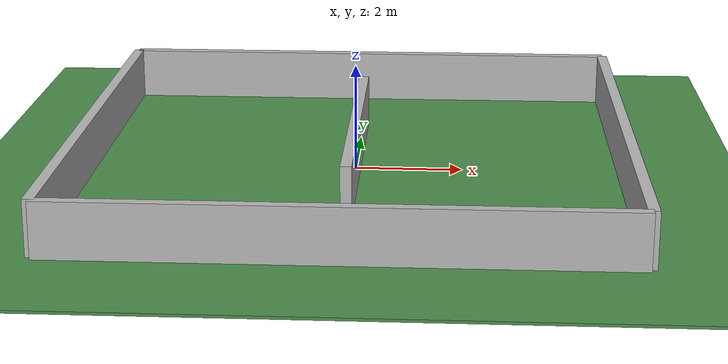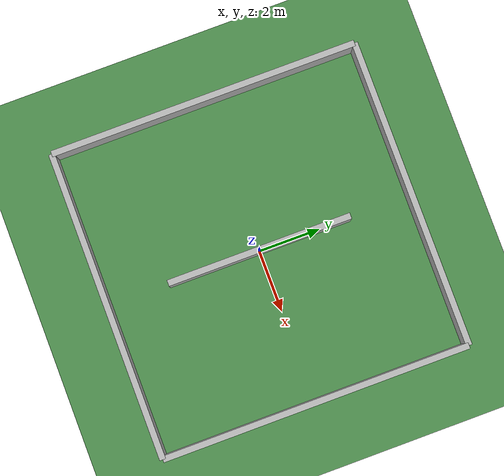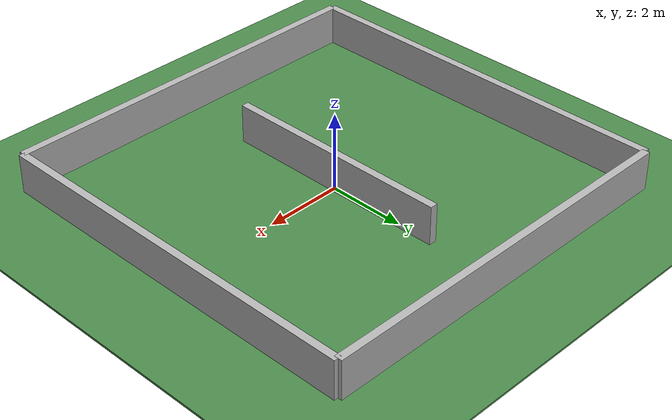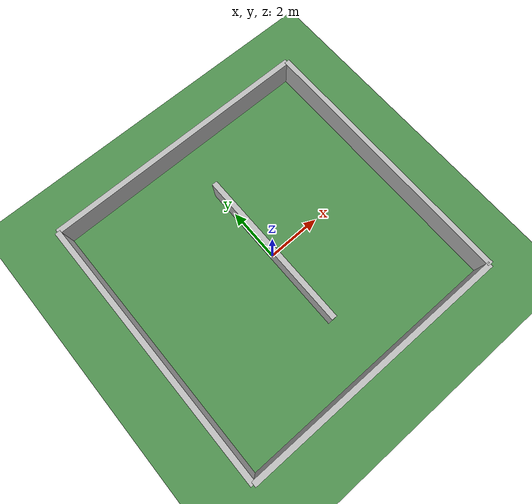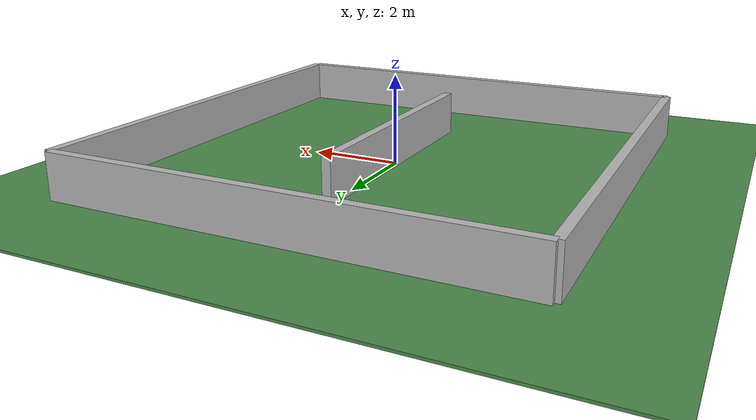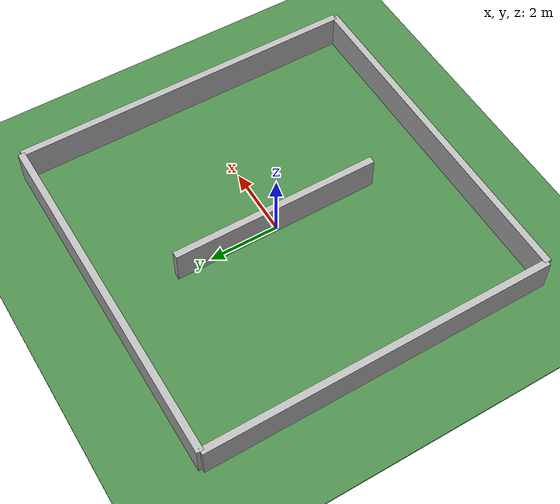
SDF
<?xml version="1.0"?>
<sdf version="1.8">
  <world name="default">
    <!-- Gazebo Sim systems -->
    <gravity>0 0 -9.81</gravity>
    <plugin filename="gz-sim-scene-broadcaster-system"   name="gz::sim::systems::SceneBroadcaster"/>
    <plugin filename="gz-sim-sensors-system"             name="gz::sim::systems::Sensors"/>
    <plugin filename="gz-sim-user-commands-system"       name="gz::sim::systems::UserCommands"/>
    <plugin filename="gz-sim-physics-system"             name="gz::sim::systems::Physics"/>

    <!-- Ground plane from your repo -->
    <include>
      <uri>model://flat_ground</uri>
      <name>ground</name>
      <pose>0 0 0 0 0 0</pose>
    </include>

    <!-- Your maze model -->
    <include>
      <uri>model://maze</uri>
      <name>maze</name>
      <pose>0 0 0 0 0 0</pose>
    </include>
  </world>
</sdf>

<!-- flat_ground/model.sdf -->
<sdf version="1.8">
  <model name="flat_ground">
    <static>true</static>
    <link name="ground">
      <!-- Slightly below z=0 so top surface is at z=0 -->
      <pose>0 0 -0.025 0 0 0</pose>
      <collision name="col">
        <geometry><box><size>100 100 0.05</size></box></geometry>
        <surface>
          <friction>
            <ode>
              <mu>1.0</mu>
              <mu2>1.0</mu2>
            </ode>
          </friction>
        </surface>
      </collision>
      <visual name="vis">
        <geometry><box><size>100 100 0.05</size></box></geometry>
        <material>
          <ambient>0.30 0.55 0.30 1</ambient>
          <diffuse>0.30 0.55 0.30 1</diffuse>
        </material>
      </visual>
    </link>
  </model>
</sdf>

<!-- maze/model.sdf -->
<sdf version="1.8">
  <model name="maze">
    <static>true</static>

    <!-- walls are 10m long, 0.2m thick, 1.0m tall -->
    <!-- north -->
    <link name="wall_n">
      <pose>0 5 0.5 0 0 0</pose>
      <collision name="col"><geometry><box><size>10 0.2 1.0</size></box></geometry></collision>
      <visual name="vis"><geometry><box><size>10 0.2 1.0</size></box></geometry></visual>
    </link>
    <!-- south -->
    <link name="wall_s">
      <pose>0 -5 0.5 0 0 0</pose>
      <collision name="col"><geometry><box><size>10 0.2 1.0</size></box></geometry></collision>
      <visual name="vis"><geometry><box><size>10 0.2 1.0</size></box></geometry></visual>
    </link>
    <!-- east -->
    <link name="wall_e">
      <pose>5 0 0.5 0 0 1.57079632679</pose>
      <collision name="col"><geometry><box><size>10 0.2 1.0</size></box></geometry></collision>
      <visual name="vis"><geometry><box><size>10 0.2 1.0</size></box></geometry></visual>
    </link>
    <!-- west -->
    <link name="wall_w">
      <pose>-5 0 0.5 0 0 1.57079632679</pose>
      <collision name="col"><geometry><box><size>10 0.2 1.0</size></box></geometry></collision>
      <visual name="vis"><geometry><box><size>10 0.2 1.0</size></box></geometry></visual>
    </link>
    <!-- inner divider -->
    <link name="wall_inner">
      <pose>0 0 0.5 0 0 1.57079632679</pose>
      <collision name="col"><geometry><box><size>6 0.2 1.0</size></box></geometry></collision>
      <visual name="vis"><geometry><box><size>6 0.2 1.0</size></box></geometry></visual>
    </link>
  </model>
</sdf>
